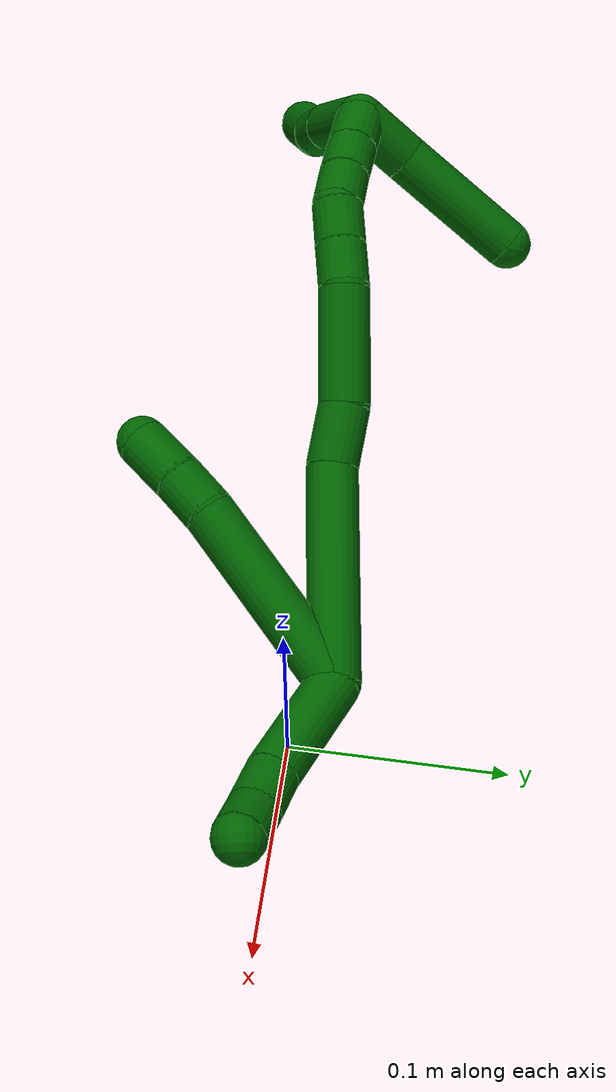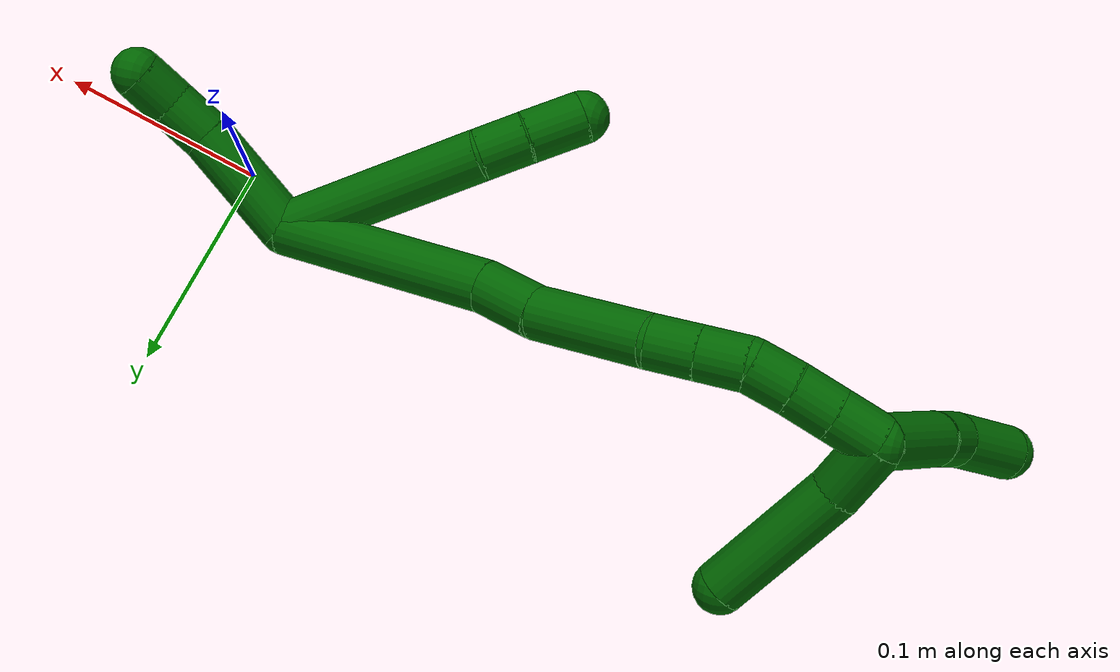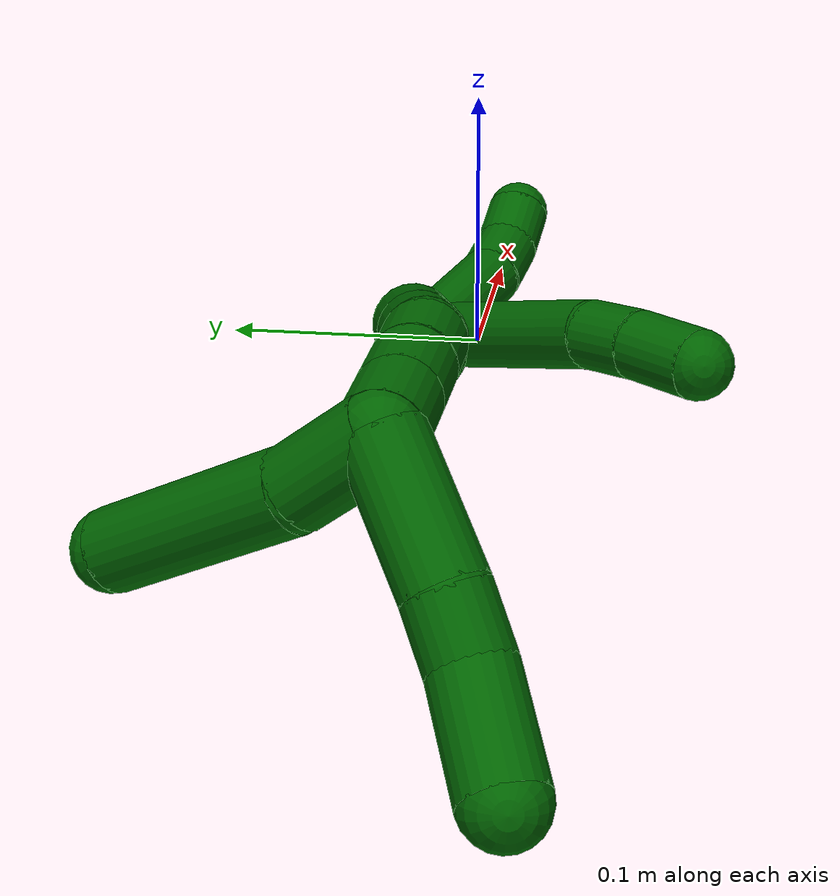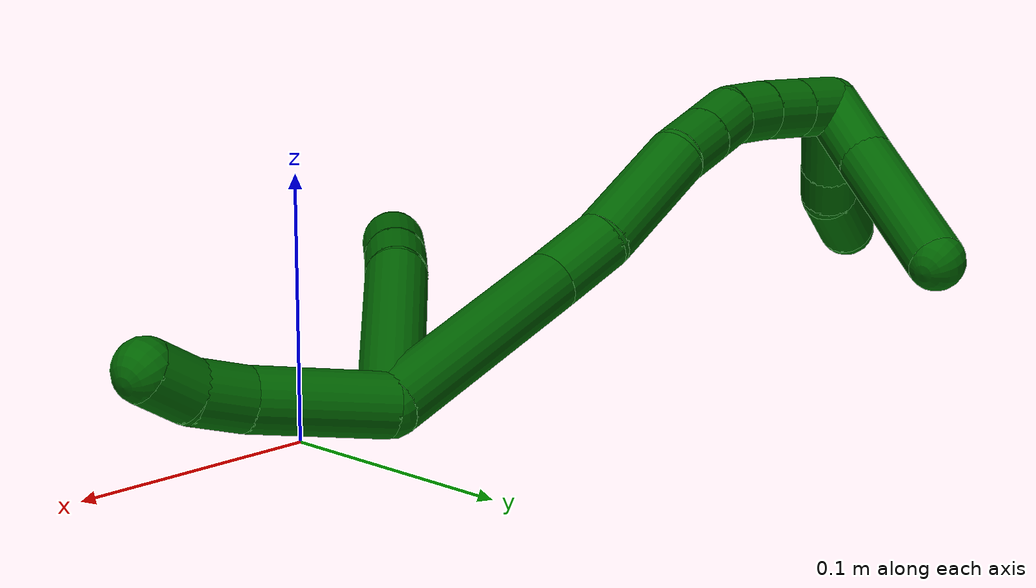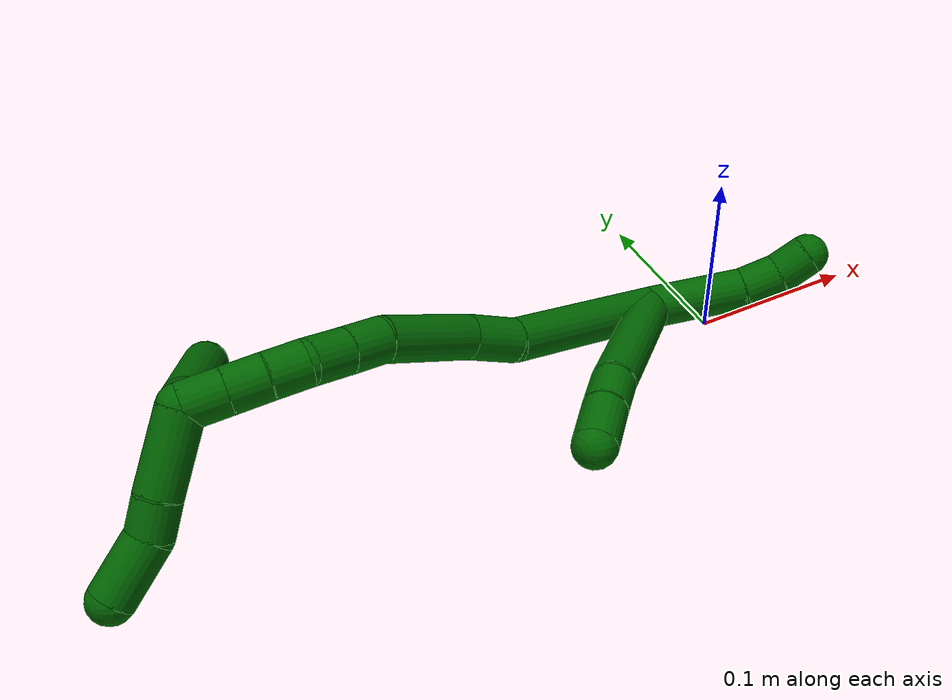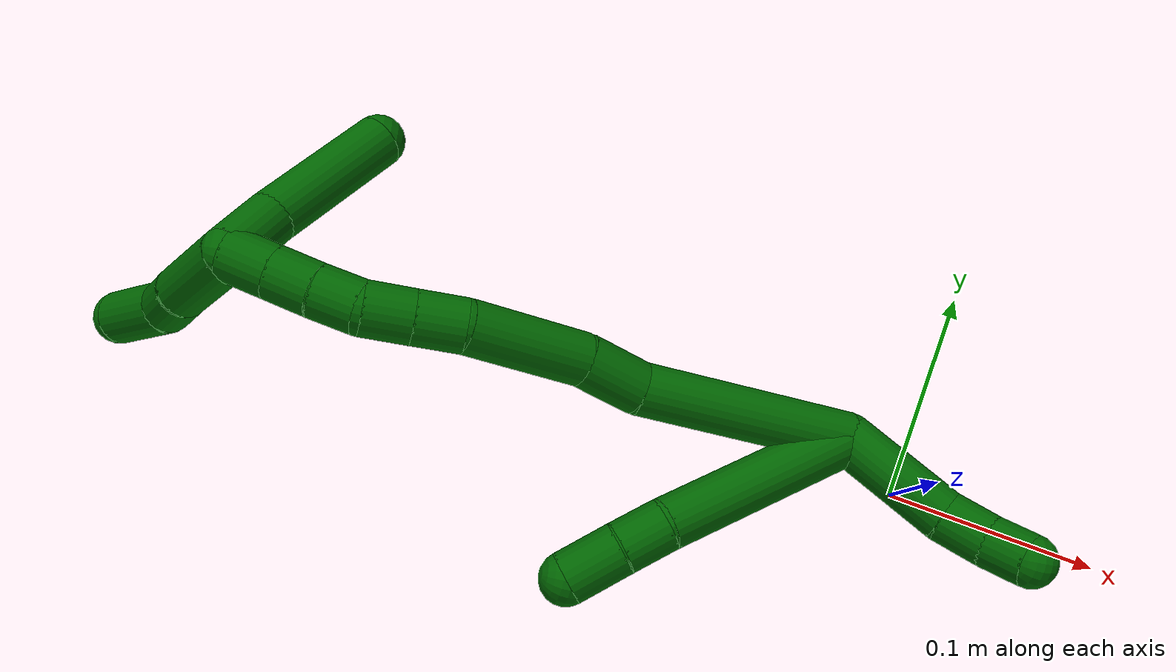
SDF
<sdf version="1.7">
 <world name="default">
  <model name="6">
   <static>0</static>
   <link name="6">
    <collision name="collision-cylinder-e_1_2_8">
     <pose>0.024321 -0.013063 0.04132 0.306205 0.511424 0.08064</pose>
     <geometry><cylinder><radius>0.0125</radius><length>0.099388</length></cylinder></geometry>
     <surface>
      <friction><ode><mu>1.16</mu><mu2>1.16</mu2><slip1>0</slip1><slip2>0</slip2></ode></friction>
      <contact><ode><kp>1e+06</kp><kd>1</kd><max_vel>0</max_vel><min_depth>0.001</min_depth></ode></contact>
     </surface>
    </collision>
    <visual name="visual-cylinder-e_1_2_8">
     <pose>0.024321 -0.013063 0.04132 0.306205 0.511424 0.08064</pose>
     <geometry><cylinder><radius>0.0125</radius><length>0.099388</length></cylinder></geometry>
     <material><ambient>0 0.392157 0.003922 1</ambient></material>
    </visual>
    <collision name="collision-cylinder-e_2_8_9">
     <pose>0.053831 -0.031081 0.091651 0.502708 0.467297 0.122075</pose>
     <geometry><cylinder><radius>0.0125</radius><length>0.023037</length></cylinder></geometry>
     <surface>
      <friction><ode><mu>1.16</mu><mu2>1.16</mu2><slip1>0</slip1><slip2>0</slip2></ode></friction>
      <contact><ode><kp>1e+06</kp><kd>1</kd><max_vel>0</max_vel><min_depth>0.001</min_depth></ode></contact>
     </surface>
    </collision>
    <visual name="visual-cylinder-e_2_8_9">
     <pose>0.053831 -0.031081 0.091651 0.502708 0.467297 0.122075</pose>
     <geometry><cylinder><radius>0.0125</radius><length>0.023037</length></cylinder></geometry>
     <material><ambient>0 0.392157 0.003922 1</ambient></material>
    </visual>
    <collision name="collision-cylinder-e_3_9_6">
     <pose>0.064805 -0.043022 0.111046 0.592214 0.432967 0.13399</pose>
     <geometry><cylinder><radius>0.0125</radius><length>0.027575</length></cylinder></geometry>
     <surface>
      <friction><ode><mu>1.16</mu><mu2>1.16</mu2><slip1>0</slip1><slip2>0</slip2></ode></friction>
      <contact><ode><kp>1e+06</kp><kd>1</kd><max_vel>0</max_vel><min_depth>0.001</min_depth></ode></contact>
     </surface>
    </collision>
    <visual name="visual-cylinder-e_3_9_6">
     <pose>0.064805 -0.043022 0.111046 0.592214 0.432967 0.13399</pose>
     <geometry><cylinder><radius>0.0125</radius><length>0.027575</length></cylinder></geometry>
     <material><ambient>0 0.392157 0.003922 1</ambient></material>
    </visual>
    <collision name="collision-cylinder-e_1_2_10">
     <pose>0.018036 0.001651 -0.021704 -3.06565 0.69194 -2.93159</pose>
     <geometry><cylinder><radius>0.0125</radius><length>0.056536</length></cylinder></geometry>
     <surface>
      <friction><ode><mu>1.16</mu><mu2>1.16</mu2><slip1>0</slip1><slip2>0</slip2></ode></friction>
      <contact><ode><kp>1e+06</kp><kd>1</kd><max_vel>0</max_vel><min_depth>0.001</min_depth></ode></contact>
     </surface>
    </collision>
    <visual name="visual-cylinder-e_1_2_10">
     <pose>0.018036 0.001651 -0.021704 -3.06565 0.69194 -2.93159</pose>
     <geometry><cylinder><radius>0.0125</radius><length>0.056536</length></cylinder></geometry>
     <material><ambient>0 0.392157 0.003922 1</ambient></material>
    </visual>
    <collision name="collision-cylinder-e_2_10_11">
     <pose>0.042671 0.006065 -0.052229 -2.8381 0.620041 -2.25086</pose>
     <geometry><cylinder><radius>0.0125</radius><length>0.022716</length></cylinder></geometry>
     <surface>
      <friction><ode><mu>1.16</mu><mu2>1.16</mu2><slip1>0</slip1><slip2>0</slip2></ode></friction>
      <contact><ode><kp>1e+06</kp><kd>1</kd><max_vel>0</max_vel><min_depth>0.001</min_depth></ode></contact>
     </surface>
    </collision>
    <visual name="visual-cylinder-e_2_10_11">
     <pose>0.042671 0.006065 -0.052229 -2.8381 0.620041 -2.25086</pose>
     <geometry><cylinder><radius>0.0125</radius><length>0.022716</length></cylinder></geometry>
     <material><ambient>0 0.392157 0.003922 1</ambient></material>
    </visual>
    <collision name="collision-cylinder-e_3_11_5">
     <pose>0.05576 0.013488 -0.067668 -2.52801 0.67579 -1.6742</pose>
     <geometry><cylinder><radius>0.0125</radius><length>0.020749</length></cylinder></geometry>
     <surface>
      <friction><ode><mu>1.16</mu><mu2>1.16</mu2><slip1>0</slip1><slip2>0</slip2></ode></friction>
      <contact><ode><kp>1e+06</kp><kd>1</kd><max_vel>0</max_vel><min_depth>0.001</min_depth></ode></contact>
     </surface>
    </collision>
    <visual name="visual-cylinder-e_3_11_5">
     <pose>0.05576 0.013488 -0.067668 -2.52801 0.67579 -1.6742</pose>
     <geometry><cylinder><radius>0.0125</radius><length>0.020749</length></cylinder></geometry>
     <material><ambient>0 0.392157 0.003922 1</ambient></material>
    </visual>
    <collision name="collision-cylinder-e_1_2_12">
     <pose>-0.001852 6.2e-05 0.052059 -0.001187 -0.03556 2.1e-05</pose>
     <geometry><cylinder><radius>0.0125</radius><length>0.104183</length></cylinder></geometry>
     <surface>
      <friction><ode><mu>1.16</mu><mu2>1.16</mu2><slip1>0</slip1><slip2>0</slip2></ode></friction>
      <contact><ode><kp>1e+06</kp><kd>1</kd><max_vel>0</max_vel><min_depth>0.001</min_depth></ode></contact>
     </surface>
    </collision>
    <visual name="visual-cylinder-e_1_2_12">
     <pose>-0.001852 6.2e-05 0.052059 -0.001187 -0.03556 2.1e-05</pose>
     <geometry><cylinder><radius>0.0125</radius><length>0.104183</length></cylinder></geometry>
     <material><ambient>0 0.392157 0.003922 1</ambient></material>
    </visual>
    <collision name="collision-cylinder-e_2_12_13">
     <pose>-0.005414 0.003925 0.11865 -0.255819 -0.113321 0.01459</pose>
     <geometry><cylinder><radius>0.0125</radius><length>0.030237</length></cylinder></geometry>
     <surface>
      <friction><ode><mu>1.16</mu><mu2>1.16</mu2><slip1>0</slip1><slip2>0</slip2></ode></friction>
      <contact><ode><kp>1e+06</kp><kd>1</kd><max_vel>0</max_vel><min_depth>0.001</min_depth></ode></contact>
     </surface>
    </collision>
    <visual name="visual-cylinder-e_2_12_13">
     <pose>-0.005414 0.003925 0.11865 -0.255819 -0.113321 0.01459</pose>
     <geometry><cylinder><radius>0.0125</radius><length>0.030237</length></cylinder></geometry>
     <material><ambient>0 0.392157 0.003922 1</ambient></material>
    </visual>
    <collision name="collision-cylinder-e_3_13_14">
     <pose>-0.005476 0.01248 0.161273 -0.167661 0.057763 -0.004855</pose>
     <geometry><cylinder><radius>0.0125</radius><length>0.057074</length></cylinder></geometry>
     <surface>
      <friction><ode><mu>1.16</mu><mu2>1.16</mu2><slip1>0</slip1><slip2>0</slip2></ode></friction>
      <contact><ode><kp>1e+06</kp><kd>1</kd><max_vel>0</max_vel><min_depth>0.001</min_depth></ode></contact>
     </surface>
    </collision>
    <visual name="visual-cylinder-e_3_13_14">
     <pose>-0.005476 0.01248 0.161273 -0.167661 0.057763 -0.004855</pose>
     <geometry><cylinder><radius>0.0125</radius><length>0.057074</length></cylinder></geometry>
     <material><ambient>0 0.392157 0.003922 1</ambient></material>
    </visual>
    <collision name="collision-cylinder-e_4_14_15">
     <pose>-0.003856 0.016481 0.200701 0.066357 -0.002464 -8.2e-05</pose>
     <geometry><cylinder><radius>0.0125</radius><length>0.022727</length></cylinder></geometry>
     <surface>
      <friction><ode><mu>1.16</mu><mu2>1.16</mu2><slip1>0</slip1><slip2>0</slip2></ode></friction>
      <contact><ode><kp>1e+06</kp><kd>1</kd><max_vel>0</max_vel><min_depth>0.001</min_depth></ode></contact>
     </surface>
    </collision>
    <visual name="visual-cylinder-e_4_14_15">
     <pose>-0.003856 0.016481 0.200701 0.066357 -0.002464 -8.2e-05</pose>
     <geometry><cylinder><radius>0.0125</radius><length>0.022727</length></cylinder></geometry>
     <material><ambient>0 0.392157 0.003922 1</ambient></material>
    </visual>
    <collision name="collision-cylinder-e_5_15_16">
     <pose>-0.003896 0.015127 0.223166 0.053901 -0.001107 -3e-05</pose>
     <geometry><cylinder><radius>0.0125</radius><length>0.022286</length></cylinder></geometry>
     <surface>
      <friction><ode><mu>1.16</mu><mu2>1.16</mu2><slip1>0</slip1><slip2>0</slip2></ode></friction>
      <contact><ode><kp>1e+06</kp><kd>1</kd><max_vel>0</max_vel><min_depth>0.001</min_depth></ode></contact>
     </surface>
    </collision>
    <visual name="visual-cylinder-e_5_15_16">
     <pose>-0.003896 0.015127 0.223166 0.053901 -0.001107 -3e-05</pose>
     <geometry><cylinder><radius>0.0125</radius><length>0.022286</length></cylinder></geometry>
     <material><ambient>0 0.392157 0.003922 1</ambient></material>
    </visual>
    <collision name="collision-cylinder-e_6_16_17">
     <pose>-0.00722 0.013033 0.243846 0.155052 -0.329908 -0.025861</pose>
     <geometry><cylinder><radius>0.0125</radius><length>0.02044</length></cylinder></geometry>
     <surface>
      <friction><ode><mu>1.16</mu><mu2>1.16</mu2><slip1>0</slip1><slip2>0</slip2></ode></friction>
      <contact><ode><kp>1e+06</kp><kd>1</kd><max_vel>0</max_vel><min_depth>0.001</min_depth></ode></contact>
     </surface>
    </collision>
    <visual name="visual-cylinder-e_6_16_17">
     <pose>-0.00722 0.013033 0.243846 0.155052 -0.329908 -0.025861</pose>
     <geometry><cylinder><radius>0.0125</radius><length>0.02044</length></cylinder></geometry>
     <material><ambient>0 0.392157 0.003922 1</ambient></material>
    </visual>
    <collision name="collision-cylinder-e_7_17_18">
     <pose>-0.014477 0.009791 0.262837 0.183271 -0.390061 -0.036301</pose>
     <geometry><cylinder><radius>0.0125</radius><length>0.020758</length></cylinder></geometry>
     <surface>
      <friction><ode><mu>1.16</mu><mu2>1.16</mu2><slip1>0</slip1><slip2>0</slip2></ode></friction>
      <contact><ode><kp>1e+06</kp><kd>1</kd><max_vel>0</max_vel><min_depth>0.001</min_depth></ode></contact>
     </surface>
    </collision>
    <visual name="visual-cylinder-e_7_17_18">
     <pose>-0.014477 0.009791 0.262837 0.183271 -0.390061 -0.036301</pose>
     <geometry><cylinder><radius>0.0125</radius><length>0.020758</length></cylinder></geometry>
     <material><ambient>0 0.392157 0.003922 1</ambient></material>
    </visual>
    <collision name="collision-cylinder-e_8_18_1">
     <pose>-0.02266 0.006169 0.282415 0.182627 -0.389861 -0.036154</pose>
     <geometry><cylinder><radius>0.0125</radius><length>0.022295</length></cylinder></geometry>
     <surface>
      <friction><ode><mu>1.16</mu><mu2>1.16</mu2><slip1>0</slip1><slip2>0</slip2></ode></friction>
      <contact><ode><kp>1e+06</kp><kd>1</kd><max_vel>0</max_vel><min_depth>0.001</min_depth></ode></contact>
     </surface>
    </collision>
    <visual name="visual-cylinder-e_8_18_1">
     <pose>-0.02266 0.006169 0.282415 0.182627 -0.389861 -0.036154</pose>
     <geometry><cylinder><radius>0.0125</radius><length>0.022295</length></cylinder></geometry>
     <material><ambient>0 0.392157 0.003922 1</ambient></material>
    </visual>
    <collision name="collision-cylinder-e_1_1_19">
     <pose>-0.040644 0.003586 0.285253 3.04458 -1.08061 -2.98009</pose>
     <geometry><cylinder><radius>0.0125</radius><length>0.031164</length></cylinder></geometry>
     <surface>
      <friction><ode><mu>1.16</mu><mu2>1.16</mu2><slip1>0</slip1><slip2>0</slip2></ode></friction>
      <contact><ode><kp>1e+06</kp><kd>1</kd><max_vel>0</max_vel><min_depth>0.001</min_depth></ode></contact>
     </surface>
    </collision>
    <visual name="visual-cylinder-e_1_1_19">
     <pose>-0.040644 0.003586 0.285253 3.04458 -1.08061 -2.98009</pose>
     <geometry><cylinder><radius>0.0125</radius><length>0.031164</length></cylinder></geometry>
     <material><ambient>0 0.392157 0.003922 1</ambient></material>
    </visual>
    <collision name="collision-cylinder-e_2_19_4">
     <pose>-0.0818 0.007424 0.257637 -2.92132 -0.921213 2.70304</pose>
     <geometry><cylinder><radius>0.0125</radius><length>0.068836</length></cylinder></geometry>
     <surface>
      <friction><ode><mu>1.16</mu><mu2>1.16</mu2><slip1>0</slip1><slip2>0</slip2></ode></friction>
      <contact><ode><kp>1e+06</kp><kd>1</kd><max_vel>0</max_vel><min_depth>0.001</min_depth></ode></contact>
     </surface>
    </collision>
    <visual name="visual-cylinder-e_2_19_4">
     <pose>-0.0818 0.007424 0.257637 -2.92132 -0.921213 2.70304</pose>
     <geometry><cylinder><radius>0.0125</radius><length>0.068836</length></cylinder></geometry>
     <material><ambient>0 0.392157 0.003922 1</ambient></material>
    </visual>
    <collision name="collision-cylinder-e_1_1_20">
     <pose>-0.030504 -0.015931 0.300873 1.18065 -0.163444 -0.109646</pose>
     <geometry><cylinder><radius>0.0125</radius><length>0.044331</length></cylinder></geometry>
     <surface>
      <friction><ode><mu>1.16</mu><mu2>1.16</mu2><slip1>0</slip1><slip2>0</slip2></ode></friction>
      <contact><ode><kp>1e+06</kp><kd>1</kd><max_vel>0</max_vel><min_depth>0.001</min_depth></ode></contact>
     </surface>
    </collision>
    <visual name="visual-cylinder-e_1_1_20">
     <pose>-0.030504 -0.015931 0.300873 1.18065 -0.163444 -0.109646</pose>
     <geometry><cylinder><radius>0.0125</radius><length>0.044331</length></cylinder></geometry>
     <material><ambient>0 0.392157 0.003922 1</ambient></material>
    </visual>
    <collision name="collision-cylinder-e_2_20_21">
     <pose>-0.036398 -0.045534 0.312243 1.25603 -0.227918 -0.165825</pose>
     <geometry><cylinder><radius>0.0125</radius><length>0.020245</length></cylinder></geometry>
     <surface>
      <friction><ode><mu>1.16</mu><mu2>1.16</mu2><slip1>0</slip1><slip2>0</slip2></ode></friction>
      <contact><ode><kp>1e+06</kp><kd>1</kd><max_vel>0</max_vel><min_depth>0.001</min_depth></ode></contact>
     </surface>
    </collision>
    <visual name="visual-cylinder-e_2_20_21">
     <pose>-0.036398 -0.045534 0.312243 1.25603 -0.227918 -0.165825</pose>
     <geometry><cylinder><radius>0.0125</radius><length>0.020245</length></cylinder></geometry>
     <material><ambient>0 0.392157 0.003922 1</ambient></material>
    </visual>
    <collision name="collision-cylinder-e_3_21_3">
     <pose>-0.04351 -0.068393 0.325719 0.912708 -0.275908 -0.136103</pose>
     <geometry><cylinder><radius>0.0125</radius><length>0.035424</length></cylinder></geometry>
     <surface>
      <friction><ode><mu>1.16</mu><mu2>1.16</mu2><slip1>0</slip1><slip2>0</slip2></ode></friction>
      <contact><ode><kp>1e+06</kp><kd>1</kd><max_vel>0</max_vel><min_depth>0.001</min_depth></ode></contact>
     </surface>
    </collision>
    <visual name="visual-cylinder-e_3_21_3">
     <pose>-0.04351 -0.068393 0.325719 0.912708 -0.275908 -0.136103</pose>
     <geometry><cylinder><radius>0.0125</radius><length>0.035424</length></cylinder></geometry>
     <material><ambient>0 0.392157 0.003922 1</ambient></material>
    </visual>
    <collision name="collision-sphere-3">
     <pose>-0.048335 -0.081876 0.336142 0 -0 0</pose>
     <geometry><sphere><radius>0.0125</radius></sphere></geometry>
     <surface>
      <friction><ode><mu>1.16</mu><mu2>1.16</mu2><slip1>0</slip1><slip2>0</slip2></ode></friction>
      <contact><ode><kp>1e+06</kp><kd>1</kd><max_vel>0</max_vel><min_depth>0.001</min_depth></ode></contact>
     </surface>
    </collision>
    <visual name="visual-sphere-3">
     <pose>-0.048335 -0.081876 0.336142 0 -0 0</pose>
     <geometry><sphere><radius>0.0125</radius></sphere></geometry>
     <material><ambient>0 0.392157 0.003922 1</ambient></material>
    </visual>
    <collision name="collision-sphere-21">
     <pose>-0.038685 -0.05491 0.315296 0 -0 0</pose>
     <geometry><sphere><radius>0.0125</radius></sphere></geometry>
     <surface>
      <friction><ode><mu>1.16</mu><mu2>1.16</mu2><slip1>0</slip1><slip2>0</slip2></ode></friction>
      <contact><ode><kp>1e+06</kp><kd>1</kd><max_vel>0</max_vel><min_depth>0.001</min_depth></ode></contact>
     </surface>
    </collision>
    <visual name="visual-sphere-21">
     <pose>-0.038685 -0.05491 0.315296 0 -0 0</pose>
     <geometry><sphere><radius>0.0125</radius></sphere></geometry>
     <material><ambient>0 0.392157 0.003922 1</ambient></material>
    </visual>
    <collision name="collision-sphere-20">
     <pose>-0.03411 -0.036157 0.30919 0 -0 0</pose>
     <geometry><sphere><radius>0.0125</radius></sphere></geometry>
     <surface>
      <friction><ode><mu>1.16</mu><mu2>1.16</mu2><slip1>0</slip1><slip2>0</slip2></ode></friction>
      <contact><ode><kp>1e+06</kp><kd>1</kd><max_vel>0</max_vel><min_depth>0.001</min_depth></ode></contact>
     </surface>
    </collision>
    <visual name="visual-sphere-20">
     <pose>-0.03411 -0.036157 0.30919 0 -0 0</pose>
     <geometry><sphere><radius>0.0125</radius></sphere></geometry>
     <material><ambient>0 0.392157 0.003922 1</ambient></material>
    </visual>
    <collision name="collision-sphere-4">
     <pose>-0.109208 0.011972 0.237322 0 -0 0</pose>
     <geometry><sphere><radius>0.0125</radius></sphere></geometry>
     <surface>
      <friction><ode><mu>1.16</mu><mu2>1.16</mu2><slip1>0</slip1><slip2>0</slip2></ode></friction>
      <contact><ode><kp>1e+06</kp><kd>1</kd><max_vel>0</max_vel><min_depth>0.001</min_depth></ode></contact>
     </surface>
    </collision>
    <visual name="visual-sphere-4">
     <pose>-0.109208 0.011972 0.237322 0 -0 0</pose>
     <geometry><sphere><radius>0.0125</radius></sphere></geometry>
     <material><ambient>0 0.392157 0.003922 1</ambient></material>
    </visual>
    <collision name="collision-sphere-11">
     <pose>0.049271 0.008828 -0.06105 0 -0 0</pose>
     <geometry><sphere><radius>0.0125</radius></sphere></geometry>
     <surface>
      <friction><ode><mu>1.16</mu><mu2>1.16</mu2><slip1>0</slip1><slip2>0</slip2></ode></friction>
      <contact><ode><kp>1e+06</kp><kd>1</kd><max_vel>0</max_vel><min_depth>0.001</min_depth></ode></contact>
     </surface>
    </collision>
    <visual name="visual-sphere-11">
     <pose>0.049271 0.008828 -0.06105 0 -0 0</pose>
     <geometry><sphere><radius>0.0125</radius></sphere></geometry>
     <material><ambient>0 0.392157 0.003922 1</ambient></material>
    </visual>
    <collision name="collision-sphere-10">
     <pose>0.036071 0.003303 -0.043407 0 -0 0</pose>
     <geometry><sphere><radius>0.0125</radius></sphere></geometry>
     <surface>
      <friction><ode><mu>1.16</mu><mu2>1.16</mu2><slip1>0</slip1><slip2>0</slip2></ode></friction>
      <contact><ode><kp>1e+06</kp><kd>1</kd><max_vel>0</max_vel><min_depth>0.001</min_depth></ode></contact>
     </surface>
    </collision>
    <visual name="visual-sphere-10">
     <pose>0.036071 0.003303 -0.043407 0 -0 0</pose>
     <geometry><sphere><radius>0.0125</radius></sphere></geometry>
     <material><ambient>0 0.392157 0.003922 1</ambient></material>
    </visual>
    <collision name="collision-sphere-6">
     <pose>0.07059 -0.050008 0.12143 0 -0 0</pose>
     <geometry><sphere><radius>0.0125</radius></sphere></geometry>
     <surface>
      <friction><ode><mu>1.16</mu><mu2>1.16</mu2><slip1>0</slip1><slip2>0</slip2></ode></friction>
      <contact><ode><kp>1e+06</kp><kd>1</kd><max_vel>0</max_vel><min_depth>0.001</min_depth></ode></contact>
     </surface>
    </collision>
    <visual name="visual-sphere-6">
     <pose>0.07059 -0.050008 0.12143 0 -0 0</pose>
     <geometry><sphere><radius>0.0125</radius></sphere></geometry>
     <material><ambient>0 0.392157 0.003922 1</ambient></material>
    </visual>
    <collision name="collision-sphere-9">
     <pose>0.05902 -0.036036 0.100662 0 -0 0</pose>
     <geometry><sphere><radius>0.0125</radius></sphere></geometry>
     <surface>
      <friction><ode><mu>1.16</mu><mu2>1.16</mu2><slip1>0</slip1><slip2>0</slip2></ode></friction>
      <contact><ode><kp>1e+06</kp><kd>1</kd><max_vel>0</max_vel><min_depth>0.001</min_depth></ode></contact>
     </surface>
    </collision>
    <visual name="visual-sphere-9">
     <pose>0.05902 -0.036036 0.100662 0 -0 0</pose>
     <geometry><sphere><radius>0.0125</radius></sphere></geometry>
     <material><ambient>0 0.392157 0.003922 1</ambient></material>
    </visual>
    <collision name="collision-sphere-2">
     <geometry><sphere><radius>0.0125</radius></sphere></geometry>
     <surface>
      <friction><ode><mu>1.16</mu><mu2>1.16</mu2><slip1>0</slip1><slip2>0</slip2></ode></friction>
      <contact><ode><kp>1e+06</kp><kd>1</kd><max_vel>0</max_vel><min_depth>0.001</min_depth></ode></contact>
     </surface>
    </collision>
    <visual name="visual-sphere-2">
     <geometry><sphere><radius>0.0125</radius></sphere></geometry>
     <material><ambient>0 0.392157 0.003922 1</ambient></material>
    </visual>
    <collision name="collision-sphere-19">
     <pose>-0.054391 0.002875 0.277952 0 -0 0</pose>
     <geometry><sphere><radius>0.0125</radius></sphere></geometry>
     <surface>
      <friction><ode><mu>1.16</mu><mu2>1.16</mu2><slip1>0</slip1><slip2>0</slip2></ode></friction>
      <contact><ode><kp>1e+06</kp><kd>1</kd><max_vel>0</max_vel><min_depth>0.001</min_depth></ode></contact>
     </surface>
    </collision>
    <visual name="visual-sphere-19">
     <pose>-0.054391 0.002875 0.277952 0 -0 0</pose>
     <geometry><sphere><radius>0.0125</radius></sphere></geometry>
     <material><ambient>0 0.392157 0.003922 1</ambient></material>
    </visual>
    <collision name="collision-sphere-8">
     <pose>0.048642 -0.026126 0.08264 0 -0 0</pose>
     <geometry><sphere><radius>0.0125</radius></sphere></geometry>
     <surface>
      <friction><ode><mu>1.16</mu><mu2>1.16</mu2><slip1>0</slip1><slip2>0</slip2></ode></friction>
      <contact><ode><kp>1e+06</kp><kd>1</kd><max_vel>0</max_vel><min_depth>0.001</min_depth></ode></contact>
     </surface>
    </collision>
    <visual name="visual-sphere-8">
     <pose>0.048642 -0.026126 0.08264 0 -0 0</pose>
     <geometry><sphere><radius>0.0125</radius></sphere></geometry>
     <material><ambient>0 0.392157 0.003922 1</ambient></material>
    </visual>
    <collision name="collision-sphere-5">
     <pose>0.06225 0.018149 -0.074285 0 -0 0</pose>
     <geometry><sphere><radius>0.0125</radius></sphere></geometry>
     <surface>
      <friction><ode><mu>1.16</mu><mu2>1.16</mu2><slip1>0</slip1><slip2>0</slip2></ode></friction>
      <contact><ode><kp>1e+06</kp><kd>1</kd><max_vel>0</max_vel><min_depth>0.001</min_depth></ode></contact>
     </surface>
    </collision>
    <visual name="visual-sphere-5">
     <pose>0.06225 0.018149 -0.074285 0 -0 0</pose>
     <geometry><sphere><radius>0.0125</radius></sphere></geometry>
     <material><ambient>0 0.392157 0.003922 1</ambient></material>
    </visual>
    <collision name="collision-sphere-12">
     <pose>-0.003704 0.000124 0.104117 0 -0 0</pose>
     <geometry><sphere><radius>0.0125</radius></sphere></geometry>
     <surface>
      <friction><ode><mu>1.16</mu><mu2>1.16</mu2><slip1>0</slip1><slip2>0</slip2></ode></friction>
      <contact><ode><kp>1e+06</kp><kd>1</kd><max_vel>0</max_vel><min_depth>0.001</min_depth></ode></contact>
     </surface>
    </collision>
    <visual name="visual-sphere-12">
     <pose>-0.003704 0.000124 0.104117 0 -0 0</pose>
     <geometry><sphere><radius>0.0125</radius></sphere></geometry>
     <material><ambient>0 0.392157 0.003922 1</ambient></material>
    </visual>
    <collision name="collision-sphere-13">
     <pose>-0.007123 0.007726 0.133183 0 -0 0</pose>
     <geometry><sphere><radius>0.0125</radius></sphere></geometry>
     <surface>
      <friction><ode><mu>1.16</mu><mu2>1.16</mu2><slip1>0</slip1><slip2>0</slip2></ode></friction>
      <contact><ode><kp>1e+06</kp><kd>1</kd><max_vel>0</max_vel><min_depth>0.001</min_depth></ode></contact>
     </surface>
    </collision>
    <visual name="visual-sphere-13">
     <pose>-0.007123 0.007726 0.133183 0 -0 0</pose>
     <geometry><sphere><radius>0.0125</radius></sphere></geometry>
     <material><ambient>0 0.392157 0.003922 1</ambient></material>
    </visual>
    <collision name="collision-sphere-14">
     <pose>-0.003828 0.017234 0.189363 0 -0 0</pose>
     <geometry><sphere><radius>0.0125</radius></sphere></geometry>
     <surface>
      <friction><ode><mu>1.16</mu><mu2>1.16</mu2><slip1>0</slip1><slip2>0</slip2></ode></friction>
      <contact><ode><kp>1e+06</kp><kd>1</kd><max_vel>0</max_vel><min_depth>0.001</min_depth></ode></contact>
     </surface>
    </collision>
    <visual name="visual-sphere-14">
     <pose>-0.003828 0.017234 0.189363 0 -0 0</pose>
     <geometry><sphere><radius>0.0125</radius></sphere></geometry>
     <material><ambient>0 0.392157 0.003922 1</ambient></material>
    </visual>
    <collision name="collision-sphere-15">
     <pose>-0.003884 0.015727 0.212039 0 -0 0</pose>
     <geometry><sphere><radius>0.0125</radius></sphere></geometry>
     <surface>
      <friction><ode><mu>1.16</mu><mu2>1.16</mu2><slip1>0</slip1><slip2>0</slip2></ode></friction>
      <contact><ode><kp>1e+06</kp><kd>1</kd><max_vel>0</max_vel><min_depth>0.001</min_depth></ode></contact>
     </surface>
    </collision>
    <visual name="visual-sphere-15">
     <pose>-0.003884 0.015727 0.212039 0 -0 0</pose>
     <geometry><sphere><radius>0.0125</radius></sphere></geometry>
     <material><ambient>0 0.392157 0.003922 1</ambient></material>
    </visual>
    <collision name="collision-sphere-16">
     <pose>-0.003909 0.014527 0.234293 0 -0 0</pose>
     <geometry><sphere><radius>0.0125</radius></sphere></geometry>
     <surface>
      <friction><ode><mu>1.16</mu><mu2>1.16</mu2><slip1>0</slip1><slip2>0</slip2></ode></friction>
      <contact><ode><kp>1e+06</kp><kd>1</kd><max_vel>0</max_vel><min_depth>0.001</min_depth></ode></contact>
     </surface>
    </collision>
    <visual name="visual-sphere-16">
     <pose>-0.003909 0.014527 0.234293 0 -0 0</pose>
     <geometry><sphere><radius>0.0125</radius></sphere></geometry>
     <material><ambient>0 0.392157 0.003922 1</ambient></material>
    </visual>
    <collision name="collision-sphere-17">
     <pose>-0.01053 0.01154 0.253398 0 -0 0</pose>
     <geometry><sphere><radius>0.0125</radius></sphere></geometry>
     <surface>
      <friction><ode><mu>1.16</mu><mu2>1.16</mu2><slip1>0</slip1><slip2>0</slip2></ode></friction>
      <contact><ode><kp>1e+06</kp><kd>1</kd><max_vel>0</max_vel><min_depth>0.001</min_depth></ode></contact>
     </surface>
    </collision>
    <visual name="visual-sphere-17">
     <pose>-0.01053 0.01154 0.253398 0 -0 0</pose>
     <geometry><sphere><radius>0.0125</radius></sphere></geometry>
     <material><ambient>0 0.392157 0.003922 1</ambient></material>
    </visual>
    <collision name="collision-sphere-18">
     <pose>-0.018423 0.008041 0.272275 0 -0 0</pose>
     <geometry><sphere><radius>0.0125</radius></sphere></geometry>
     <surface>
      <friction><ode><mu>1.16</mu><mu2>1.16</mu2><slip1>0</slip1><slip2>0</slip2></ode></friction>
      <contact><ode><kp>1e+06</kp><kd>1</kd><max_vel>0</max_vel><min_depth>0.001</min_depth></ode></contact>
     </surface>
    </collision>
    <visual name="visual-sphere-18">
     <pose>-0.018423 0.008041 0.272275 0 -0 0</pose>
     <geometry><sphere><radius>0.0125</radius></sphere></geometry>
     <material><ambient>0 0.392157 0.003922 1</ambient></material>
    </visual>
    <collision name="collision-sphere-1">
     <pose>-0.026897 0.004296 0.292555 0 -0 0</pose>
     <geometry><sphere><radius>0.0125</radius></sphere></geometry>
     <surface>
      <friction><ode><mu>1.16</mu><mu2>1.16</mu2><slip1>0</slip1><slip2>0</slip2></ode></friction>
      <contact><ode><kp>1e+06</kp><kd>1</kd><max_vel>0</max_vel><min_depth>0.001</min_depth></ode></contact>
     </surface>
    </collision>
    <visual name="visual-sphere-1">
     <pose>-0.026897 0.004296 0.292555 0 -0 0</pose>
     <geometry><sphere><radius>0.0125</radius></sphere></geometry>
     <material><ambient>0 0.392157 0.003922 1</ambient></material>
    </visual>
    <inertial>
     <pose>-0.004979 -0.005282 0.143696 0 -0 0</pose>
     <mass>0.75</mass>
     <inertia>
      <ixx>0.000196</ixx>
      <ixy>0</ixy>
      <ixz>0</ixz>
      <iyy>0.000271</iyy>
      <iyz>0</iyz>
      <izz>3.3e-05</izz>
     </inertia>
    </inertial>
   </link>
   <pose>-0.028942 0.017088 0.011424 1.24705 -0.528083 -1.22075</pose>
  </model>
 </world>
</sdf>
